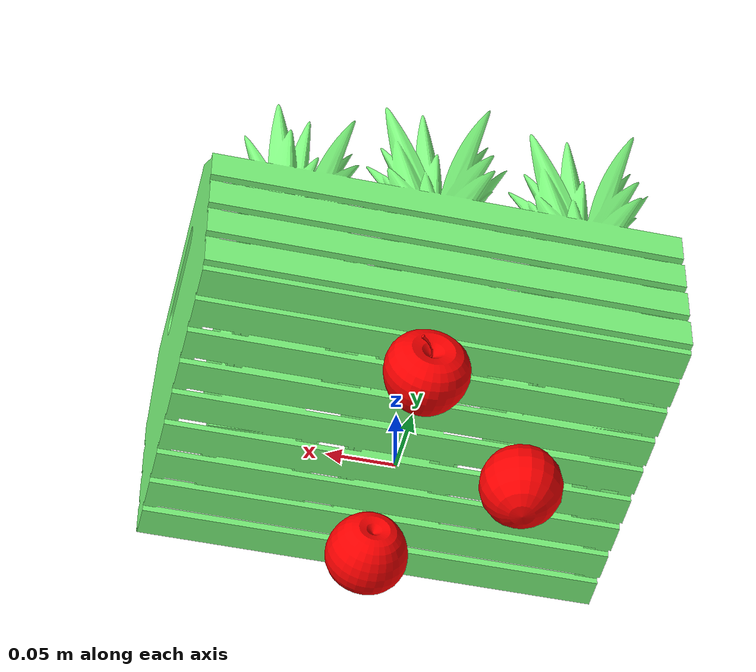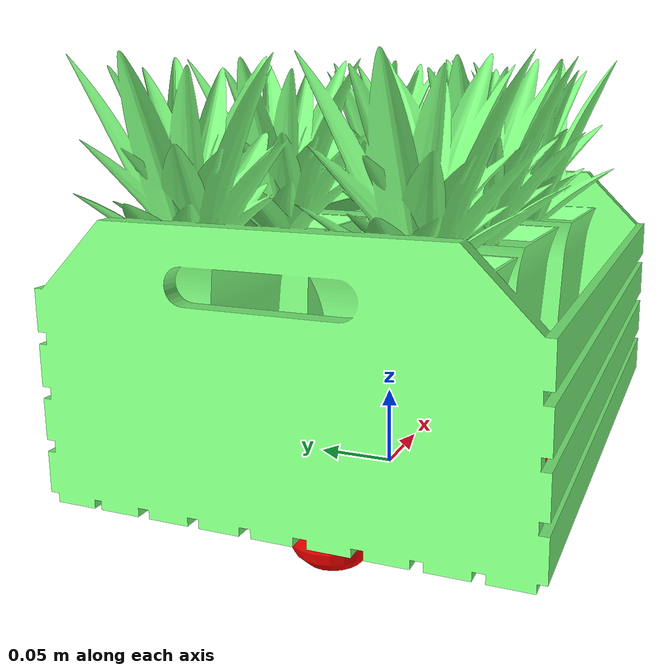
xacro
<?xml version="1.0"?>
<robot xmlns:xacro="http://www.ros.org/wiki/xacro" name="homework">

    <!-- COLOR -->
    <material name="white">
        <color rgba="1 1 1 1" />
    </material>

    <material name="blue">
        <color rgba="0 0 1 1"/>
    </material>

    <material name="black">
        <color rgba="0 0 0 1"/>
    </material>

    <material name="red">
        <color rgba="1 0 0 1"/>
    </material>

    <material name="green">
        <color rgba="0.5 1 0.5 1"/>
    </material>

    <!-- BASE LINK -->
    <link name="base_link">
        <inertial>
            <mass value="1"/>
            <inertia ixx="0.1" ixy="0" ixz="0" iyy="0.1" iyz="0" izz="0.1"/>
        </inertial>
    </link>

    <!-- BODY LINK -->
    <joint name="body_joint" type="fixed">
        <parent link="base_link"/>
        <child link="body"/>
        <origin xyz="-0.12 0 0"/>
    </joint>

    <link name="body">
        <visual>
            <origin xyz="0.1 0 0.03"/>
            <geometry>
                <mesh filename="plants.stl" scale="0.001 0.001 0.001"/>
            </geometry>
            <material name="green"/>
        </visual>
        <collision>
            <origin xyz="0.1 0 0.03"/>
            <geometry>
                <mesh filename="plants.stl" scale="0.001 0.001 0.001"/>
            </geometry>
        </collision>
        <inertial>
            <origin xyz="0.1 0 0.03" rpy="0 0 0"/>
            <mass value="0.5"/>
            <inertia ixx="0.02" ixy="0" ixz="0" iyy="0.02" iyz="0" izz="0.02"/>
        </inertial>
    </link>

    <!-- LEFT WHEEL LINK -->
    <joint name="left_wheel_joint" type="continuous">
        <parent link="base_link"/>
        <child link="left_wheel"/>
        <origin xyz="0 0.065 0" rpy="-1.5708 0 0" />
        <axis xyz="0 0 1"/>
    </joint>

    <link name="left_wheel">
        <visual>
            <geometry>
                <mesh filename="apple.stl" scale="0.015 0.015 0.015"/>
            </geometry>
            <material name="red"/>
        </visual>
        <collision>
            <geometry>
                <mesh filename="apple.stl" scale="0.015 0.015 0.015"/>
            </geometry>
        </collision>
        <inertial>
            <origin xyz="0 0 0" rpy="0 0 0"/>
            <mass value="0.1"/>
            <inertia ixx="0.001" ixy="0" ixz="0" iyy="0.001" iyz="0" izz="0.001"/>
        </inertial>
    </link>

    <!-- RIGHT WHEEL LINK -->
    <joint name="right_wheel_joint" type="continuous">
        <parent link="base_link"/>
        <child link="right_wheel"/>
        <origin xyz="0 -0.065 0" rpy="1.5708 0 0" />
        <axis xyz="0 0 -1"/>
    </joint>

    <link name="right_wheel">
        <visual>
            <geometry>
                <mesh filename="apple.stl" scale="0.015 0.015 0.015"/>
            </geometry>
            <material name="red"/>
        </visual>
        <collision>
            <geometry>
                <mesh filename="apple.stl" scale="0.015 0.015 0.015"/>
            </geometry>
        </collision>
        <inertial>
            <origin xyz="0 0 0" rpy="0 0 0"/>
            <mass value="0.1"/>
            <inertia ixx="0.001" ixy="0" ixz="0" iyy="0.001" iyz="0" izz="0.001"/>
        </inertial>
    </link>

    <!-- CASTER WHEEL LINK -->
    <joint name="caster_wheel_joint" type="fixed">
        <parent link="body"/>
        <child link="caster_wheel"/>
        <origin xyz="0.03 0 0"/>
    </joint>

    <link name="caster_wheel">
        <visual>
            <geometry>
                <sphere radius="0.03"/>
            </geometry>
            <material name="red"/>
        </visual>
        <collision>
            <geometry>
                <sphere radius="0.03"/>
            </geometry>
        </collision>
        <inertial>
            <origin xyz="0 0 0" rpy="0 0 0"/>
            <mass value="0.1"/>
            <inertia ixx="0.0001" ixy="0" ixz="0" iyy="0.0001" iyz="0" izz="0.0001"/>
        </inertial>
    </link>

</robot>
